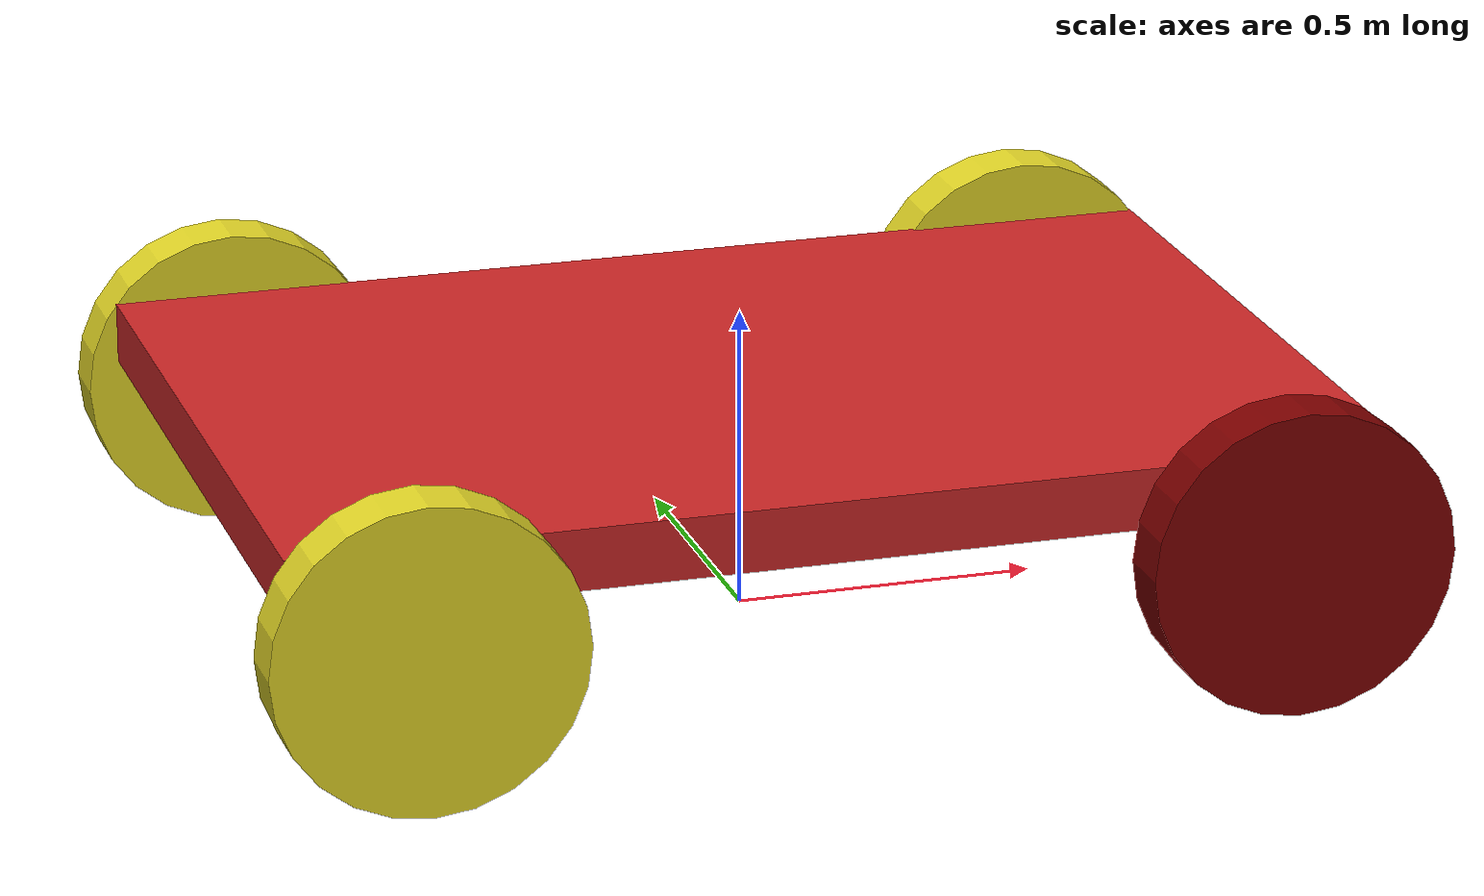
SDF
<?xml version='1.0'?>
<sdf version='1.6'>
  <model name='rover'>
    <link name='link_0'>
      <inertial>
        <mass>1</mass>
        <inertia>
          <ixx>0.0164583</ixx>
          <ixy>0</ixy>
          <ixz>0</ixz>
          <iyy>0.0164583</iyy>
          <iyz>0</iyz>
          <izz>0.03125</izz>
        </inertia>
        <pose frame=''>0 0 0 0 -0 0</pose>
      </inertial>
      <pose frame=''>0.7 -0.675024 0.25 1.5707 -0 0</pose>
      <gravity>1</gravity>
      <self_collide>0</self_collide>
      <kinematic>0</kinematic>
      <enable_wind>0</enable_wind>
      <visual name='visual'>
        <pose frame=''>0 0 0 0 -0 0</pose>
        <geometry>
          <cylinder>
            <radius>0.25</radius>
            <length>0.1</length>
          </cylinder>
        </geometry>
        <material>
          <lighting>1</lighting>
          <script>
            <uri>file://media/materials/scripts/gazebo.material</uri>
            <name>Gazebo/Grey</name>
          </script>
          <shader type='vertex'>
            <normal_map>__default__</normal_map>
          </shader>
          <ambient>0.5 0 0 1</ambient>
          <diffuse>0.5 0 0 1</diffuse>
          <specular>0.5 0 0 1</specular>
          <emissive>0.5 0 0 1</emissive>
        </material>
        <transparency>0</transparency>
        <cast_shadows>1</cast_shadows>
      </visual>
      <collision name='collision'>
        <laser_retro>0</laser_retro>
        <max_contacts>10</max_contacts>
        <pose frame=''>0 0 0 0 -0 0</pose>
        <geometry>
          <cylinder>
            <radius>0.25</radius>
            <length>0.1</length>
          </cylinder>
        </geometry>
        <surface>
          <friction>
            <ode>
              <mu>1</mu>
              <mu2>1</mu2>
              <fdir1>0 0 0</fdir1>
              <slip1>0</slip1>
              <slip2>0</slip2>
            </ode>
            <torsional>
              <coefficient>1</coefficient>
              <patch_radius>0</patch_radius>
              <surface_radius>0</surface_radius>
              <use_patch_radius>1</use_patch_radius>
              <ode>
                <slip>0</slip>
              </ode>
            </torsional>
          </friction>
          <bounce>
            <restitution_coefficient>0</restitution_coefficient>
            <threshold>1e+06</threshold>
          </bounce>
          <contact>
            <collide_without_contact>0</collide_without_contact>
            <collide_without_contact_bitmask>1</collide_without_contact_bitmask>
            <collide_bitmask>1</collide_bitmask>
            <ode>
              <soft_cfm>0</soft_cfm>
              <soft_erp>0.2</soft_erp>
              <kp>1e+13</kp>
              <kd>1</kd>
              <max_vel>0.01</max_vel>
              <min_depth>0</min_depth>
            </ode>
            <bullet>
              <split_impulse>1</split_impulse>
              <split_impulse_penetration_threshold>-0.01</split_impulse_penetration_threshold>
              <soft_cfm>0</soft_cfm>
              <soft_erp>0.2</soft_erp>
              <kp>1e+13</kp>
              <kd>1</kd>
            </bullet>
          </contact>
        </surface>
      </collision>
    </link>
    <link name='link_0_0'>
      <inertial>
        <mass>0.341385</mass>
        <inertia>
          <ixx>0.0369487</ixx>
          <ixy>0</ixy>
          <ixz>0</ixz>
          <iyy>0.147803</iyy>
          <iyz>0</iyz>
          <izz>0.183752</izz>
        </inertia>
        <pose frame=''>0 0 0 0 -0 0</pose>
      </inertial>
      <pose frame=''>-0 0 0.35 0 -0 0</pose>
      <gravity>1</gravity>
      <self_collide>0</self_collide>
      <kinematic>0</kinematic>
      <enable_wind>0</enable_wind>
      <visual name='visual'>
        <pose frame=''>0 0 0 0 -0 0</pose>
        <geometry>
          <box>
            <size>1.8 1.25 0.1</size>
          </box>
        </geometry>
        <material>
          <lighting>1</lighting>
          <script>
            <uri>file://media/materials/scripts/gazebo.material</uri>
            <name>Gazebo/Red</name>
          </script>
          <shader type='vertex'>
            <normal_map>__default__</normal_map>
          </shader>
          <ambient>1 0 0 1</ambient>
          <diffuse>1 0 0 1</diffuse>
          <specular>1 0 0 1</specular>
          <emissive>1 0 0 1</emissive>
        </material>
        <transparency>0</transparency>
        <cast_shadows>1</cast_shadows>
      </visual>
      <collision name='collision'>
        <laser_retro>0</laser_retro>
        <max_contacts>10</max_contacts>
        <pose frame=''>0 0 0 0 -0 0</pose>
        <geometry>
          <box>
            <size>1.8 1.25 0.1</size>
          </box>
        </geometry>
        <surface>
          <friction>
            <ode>
              <mu>1</mu>
              <mu2>1</mu2>
              <fdir1>0 0 0</fdir1>
              <slip1>0</slip1>
              <slip2>0</slip2>
            </ode>
            <torsional>
              <coefficient>1</coefficient>
              <patch_radius>0</patch_radius>
              <surface_radius>0</surface_radius>
              <use_patch_radius>1</use_patch_radius>
              <ode>
                <slip>0</slip>
              </ode>
            </torsional>
          </friction>
          <bounce>
            <restitution_coefficient>0</restitution_coefficient>
            <threshold>1e+06</threshold>
          </bounce>
          <contact>
            <collide_without_contact>0</collide_without_contact>
            <collide_without_contact_bitmask>1</collide_without_contact_bitmask>
            <collide_bitmask>1</collide_bitmask>
            <ode>
              <soft_cfm>0</soft_cfm>
              <soft_erp>0.2</soft_erp>
              <kp>1e+13</kp>
              <kd>1</kd>
              <max_vel>0.01</max_vel>
              <min_depth>0</min_depth>
            </ode>
            <bullet>
              <split_impulse>1</split_impulse>
              <split_impulse_penetration_threshold>-0.01</split_impulse_penetration_threshold>
              <soft_cfm>0</soft_cfm>
              <soft_erp>0.2</soft_erp>
              <kp>1e+13</kp>
              <kd>1</kd>
            </bullet>
          </contact>
        </surface>
      </collision>
    </link>
    <link name='link_0_clone'>
      <inertial>
        <mass>1</mass>
        <inertia>
          <ixx>0.145833</ixx>
          <ixy>0</ixy>
          <ixz>0</ixz>
          <iyy>0.145833</iyy>
          <iyz>0</iyz>
          <izz>0.125</izz>
        </inertia>
        <pose frame=''>0 0 0 0 -0 0</pose>
      </inertial>
      <pose frame=''>0.7 0.667373 0.250004 1.5707 -0 0</pose>
      <gravity>1</gravity>
      <self_collide>0</self_collide>
      <kinematic>0</kinematic>
      <enable_wind>0</enable_wind>
      <visual name='visual'>
        <pose frame=''>0 0 0 0 -0 0</pose>
        <geometry>
          <cylinder>
            <radius>0.25</radius>
            <length>0.1</length>
          </cylinder>
        </geometry>
        <material>
          <lighting>1</lighting>
          <script>
            <uri>file://media/materials/scripts/gazebo.material</uri>
            <name>Gazebo/Yellow</name>
          </script>
          <shader type='vertex'>
            <normal_map>__default__</normal_map>
          </shader>
          <ambient>0.5 0 0 1</ambient>
          <diffuse>0.5 0 0 1</diffuse>
          <specular>0.5 0 0 1</specular>
          <emissive>0.5 0 0 1</emissive>
        </material>
        <transparency>0</transparency>
        <cast_shadows>1</cast_shadows>
      </visual>
      <collision name='collision'>
        <laser_retro>0</laser_retro>
        <max_contacts>10</max_contacts>
        <pose frame=''>0 0 0 0 -0 0</pose>
        <geometry>
          <cylinder>
            <radius>0.25</radius>
            <length>0.1</length>
          </cylinder>
        </geometry>
        <surface>
          <friction>
            <ode>
              <mu>1</mu>
              <mu2>1</mu2>
              <fdir1>0 0 0</fdir1>
              <slip1>0</slip1>
              <slip2>0</slip2>
            </ode>
            <torsional>
              <coefficient>1</coefficient>
              <patch_radius>0</patch_radius>
              <surface_radius>0</surface_radius>
              <use_patch_radius>1</use_patch_radius>
              <ode>
                <slip>0</slip>
              </ode>
            </torsional>
          </friction>
          <bounce>
            <restitution_coefficient>0</restitution_coefficient>
            <threshold>1e+06</threshold>
          </bounce>
          <contact>
            <collide_without_contact>0</collide_without_contact>
            <collide_without_contact_bitmask>1</collide_without_contact_bitmask>
            <collide_bitmask>1</collide_bitmask>
            <ode>
              <soft_cfm>0</soft_cfm>
              <soft_erp>0.2</soft_erp>
              <kp>1e+13</kp>
              <kd>1</kd>
              <max_vel>0.01</max_vel>
              <min_depth>0</min_depth>
            </ode>
            <bullet>
              <split_impulse>1</split_impulse>
              <split_impulse_penetration_threshold>-0.01</split_impulse_penetration_threshold>
              <soft_cfm>0</soft_cfm>
              <soft_erp>0.2</soft_erp>
              <kp>1e+13</kp>
              <kd>1</kd>
            </bullet>
          </contact>
        </surface>
      </collision>
    </link>
    <link name='link_0_clone_0'>
      <inertial>
        <mass>1</mass>
        <inertia>
          <ixx>0.0164583</ixx>
          <ixy>0</ixy>
          <ixz>0</ixz>
          <iyy>0.0164583</iyy>
          <iyz>0</iyz>
          <izz>0.03125</izz>
        </inertia>
        <pose frame=''>0 0 0 0 -0 0</pose>
      </inertial>
      <pose frame=''>-0.7 -0.67687 0.25 1.5707 -0 0</pose>
      <gravity>1</gravity>
      <self_collide>0</self_collide>
      <kinematic>0</kinematic>
      <enable_wind>0</enable_wind>
      <visual name='visual'>
        <pose frame=''>0 0 0 0 -0 0</pose>
        <geometry>
          <cylinder>
            <radius>0.25</radius>
            <length>0.1</length>
          </cylinder>
        </geometry>
        <material>
          <lighting>1</lighting>
          <script>
            <uri>file://media/materials/scripts/gazebo.material</uri>
            <name>Gazebo/Yellow</name>
          </script>
          <shader type='vertex'>
            <normal_map>__default__</normal_map>
          </shader>
          <ambient>0.5 0 0 1</ambient>
          <diffuse>0.5 0 0 1</diffuse>
          <specular>0.5 0 0 1</specular>
          <emissive>0.5 0 0 1</emissive>
        </material>
        <transparency>0</transparency>
        <cast_shadows>1</cast_shadows>
      </visual>
      <collision name='collision'>
        <laser_retro>0</laser_retro>
        <max_contacts>10</max_contacts>
        <pose frame=''>0 0 0 0 -0 0</pose>
        <geometry>
          <cylinder>
            <radius>0.25</radius>
            <length>0.1</length>
          </cylinder>
        </geometry>
        <surface>
          <friction>
            <ode>
              <mu>1</mu>
              <mu2>1</mu2>
              <fdir1>0 0 0</fdir1>
              <slip1>0</slip1>
              <slip2>0</slip2>
            </ode>
            <torsional>
              <coefficient>1</coefficient>
              <patch_radius>0</patch_radius>
              <surface_radius>0</surface_radius>
              <use_patch_radius>1</use_patch_radius>
              <ode>
                <slip>0</slip>
              </ode>
            </torsional>
          </friction>
          <bounce>
            <restitution_coefficient>0</restitution_coefficient>
            <threshold>1e+06</threshold>
          </bounce>
          <contact>
            <collide_without_contact>0</collide_without_contact>
            <collide_without_contact_bitmask>1</collide_without_contact_bitmask>
            <collide_bitmask>1</collide_bitmask>
            <ode>
              <soft_cfm>0</soft_cfm>
              <soft_erp>0.2</soft_erp>
              <kp>1e+13</kp>
              <kd>1</kd>
              <max_vel>0.01</max_vel>
              <min_depth>0</min_depth>
            </ode>
            <bullet>
              <split_impulse>1</split_impulse>
              <split_impulse_penetration_threshold>-0.01</split_impulse_penetration_threshold>
              <soft_cfm>0</soft_cfm>
              <soft_erp>0.2</soft_erp>
              <kp>1e+13</kp>
              <kd>1</kd>
            </bullet>
          </contact>
        </surface>
      </collision>
    </link>
    <link name='link_0_clone_0_clone'>
      <inertial>
        <mass>1</mass>
        <inertia>
          <ixx>0.0164583</ixx>
          <ixy>0</ixy>
          <ixz>0</ixz>
          <iyy>0.0164583</iyy>
          <iyz>0</iyz>
          <izz>0.03125</izz>
        </inertia>
        <pose frame=''>0 0 0 0 -0 0</pose>
      </inertial>
      <pose frame=''>-0.7 0.673178 0.25 1.5707 -0 0</pose>
      <gravity>1</gravity>
      <self_collide>0</self_collide>
      <kinematic>0</kinematic>
      <enable_wind>0</enable_wind>
      <visual name='visual'>
        <pose frame=''>0 0 0 0 -0 0</pose>
        <geometry>
          <cylinder>
            <radius>0.25</radius>
            <length>0.1</length>
          </cylinder>
        </geometry>
        <material>
          <lighting>1</lighting>
          <script>
            <uri>file://media/materials/scripts/gazebo.material</uri>
            <name>Gazebo/Yellow</name>
          </script>
          <shader type='vertex'>
            <normal_map>__default__</normal_map>
          </shader>
          <ambient>0.5 0 0 1</ambient>
          <diffuse>0.5 0 0 1</diffuse>
          <specular>0.5 0 0 1</specular>
          <emissive>0.5 0 0 1</emissive>
        </material>
        <transparency>0</transparency>
        <cast_shadows>1</cast_shadows>
      </visual>
      <collision name='collision'>
        <laser_retro>0</laser_retro>
        <max_contacts>10</max_contacts>
        <pose frame=''>0 0 0 0 -0 0</pose>
        <geometry>
          <cylinder>
            <radius>0.25</radius>
            <length>0.1</length>
          </cylinder>
        </geometry>
        <surface>
          <friction>
            <ode>
              <mu>1</mu>
              <mu2>1</mu2>
              <fdir1>0 0 0</fdir1>
              <slip1>0</slip1>
              <slip2>0</slip2>
            </ode>
            <torsional>
              <coefficient>1</coefficient>
              <patch_radius>0</patch_radius>
              <surface_radius>0</surface_radius>
              <use_patch_radius>1</use_patch_radius>
              <ode>
                <slip>0</slip>
              </ode>
            </torsional>
          </friction>
          <bounce>
            <restitution_coefficient>0</restitution_coefficient>
            <threshold>1e+06</threshold>
          </bounce>
          <contact>
            <collide_without_contact>0</collide_without_contact>
            <collide_without_contact_bitmask>1</collide_without_contact_bitmask>
            <collide_bitmask>1</collide_bitmask>
            <ode>
              <soft_cfm>0</soft_cfm>
              <soft_erp>0.2</soft_erp>
              <kp>1e+13</kp>
              <kd>1</kd>
              <max_vel>0.01</max_vel>
              <min_depth>0</min_depth>
            </ode>
            <bullet>
              <split_impulse>1</split_impulse>
              <split_impulse_penetration_threshold>-0.01</split_impulse_penetration_threshold>
              <soft_cfm>0</soft_cfm>
              <soft_erp>0.2</soft_erp>
              <kp>1e+13</kp>
              <kd>1</kd>
            </bullet>
          </contact>
        </surface>
      </collision>
    </link>
    <link name='link_1'>
      <inertial>
        <mass>1</mass>
        <inertia>
          <ixx>0.166667</ixx>
          <ixy>0</ixy>
          <ixz>0</ixz>
          <iyy>0.166667</iyy>
          <iyz>0</iyz>
          <izz>0.166667</izz>
        </inertia>
        <pose frame=''>0 0 0 0 -0 0</pose>
      </inertial>
      <pose frame=''>0.7 -0 0.25 0 -0 0</pose>
      <gravity>1</gravity>
      <self_collide>0</self_collide>
      <kinematic>0</kinematic>
      <enable_wind>0</enable_wind>
      <visual name='visual'>
        <pose frame=''>0 0 0 0 -0 0</pose>
        <geometry>
          <box>
            <size>0.2 1.25 0.1</size>
          </box>
        </geometry>
        <material>
          <lighting>1</lighting>
          <script>
            <uri>file://media/materials/scripts/gazebo.material</uri>
            <name>Gazebo/Orange</name>
          </script>
          <emissive>0 0 0 1</emissive>
          <shader type='vertex'>
            <normal_map>__default__</normal_map>
          </shader>
          <ambient>0.3 0.3 0.3 1</ambient>
          <diffuse>0.7 0.7 0.7 1</diffuse>
          <specular>0.01 0.01 0.01 1</specular>
        </material>
        <transparency>0</transparency>
        <cast_shadows>1</cast_shadows>
      </visual>
      <collision name='collision'>
        <laser_retro>0</laser_retro>
        <max_contacts>10</max_contacts>
        <pose frame=''>0 0 0 0 -0 0</pose>
        <geometry>
          <box>
            <size>0.2 1.25 0.1</size>
          </box>
        </geometry>
        <surface>
          <friction>
            <ode>
              <mu>1</mu>
              <mu2>1</mu2>
              <fdir1>0 0 0</fdir1>
              <slip1>0</slip1>
              <slip2>0</slip2>
            </ode>
            <torsional>
              <coefficient>1</coefficient>
              <patch_radius>0</patch_radius>
              <surface_radius>0</surface_radius>
              <use_patch_radius>1</use_patch_radius>
              <ode>
                <slip>0</slip>
              </ode>
            </torsional>
          </friction>
          <bounce>
            <restitution_coefficient>0</restitution_coefficient>
            <threshold>1e+06</threshold>
          </bounce>
          <contact>
            <collide_without_contact>0</collide_without_contact>
            <collide_without_contact_bitmask>1</collide_without_contact_bitmask>
            <collide_bitmask>1</collide_bitmask>
            <ode>
              <soft_cfm>0</soft_cfm>
              <soft_erp>0.2</soft_erp>
              <kp>1e+13</kp>
              <kd>1</kd>
              <max_vel>0.01</max_vel>
              <min_depth>0</min_depth>
            </ode>
            <bullet>
              <split_impulse>1</split_impulse>
              <split_impulse_penetration_threshold>-0.01</split_impulse_penetration_threshold>
              <soft_cfm>0</soft_cfm>
              <soft_erp>0.2</soft_erp>
              <kp>1e+13</kp>
              <kd>1</kd>
            </bullet>
          </contact>
        </surface>
      </collision>
    </link>
    <link name='link_1_clone'>
      <inertial>
        <mass>1</mass>
        <inertia>
          <ixx>0.166667</ixx>
          <ixy>0</ixy>
          <ixz>0</ixz>
          <iyy>0.166667</iyy>
          <iyz>0</iyz>
          <izz>0.166667</izz>
        </inertia>
        <pose frame=''>0 0 0 0 -0 0</pose>
      </inertial>
      <pose frame=''>-0.7 -0.001846 0.25 0 -0 0</pose>
      <gravity>1</gravity>
      <self_collide>0</self_collide>
      <kinematic>0</kinematic>
      <enable_wind>0</enable_wind>
      <visual name='visual'>
        <pose frame=''>0 0 0 0 -0 0</pose>
        <geometry>
          <box>
            <size>0.2 1.25 0.1</size>
          </box>
        </geometry>
        <material>
          <lighting>1</lighting>
          <script>
            <uri>file://media/materials/scripts/gazebo.material</uri>
            <name>Gazebo/Orange</name>
          </script>
          <emissive>0 0 0 1</emissive>
          <shader type='vertex'>
            <normal_map>__default__</normal_map>
          </shader>
          <ambient>0.3 0.3 0.3 1</ambient>
          <diffuse>0.7 0.7 0.7 1</diffuse>
          <specular>0.01 0.01 0.01 1</specular>
        </material>
        <transparency>0</transparency>
        <cast_shadows>1</cast_shadows>
      </visual>
      <collision name='collision'>
        <laser_retro>0</laser_retro>
        <max_contacts>10</max_contacts>
        <pose frame=''>0 0 0 0 -0 0</pose>
        <geometry>
          <box>
            <size>0.2 1.25 0.1</size>
          </box>
        </geometry>
        <surface>
          <friction>
            <ode>
              <mu>1</mu>
              <mu2>1</mu2>
              <fdir1>0 0 0</fdir1>
              <slip1>0</slip1>
              <slip2>0</slip2>
            </ode>
            <torsional>
              <coefficient>1</coefficient>
              <patch_radius>0</patch_radius>
              <surface_radius>0</surface_radius>
              <use_patch_radius>1</use_patch_radius>
              <ode>
                <slip>0</slip>
              </ode>
            </torsional>
          </friction>
          <bounce>
            <restitution_coefficient>0</restitution_coefficient>
            <threshold>1e+06</threshold>
          </bounce>
          <contact>
            <collide_without_contact>0</collide_without_contact>
            <collide_without_contact_bitmask>1</collide_without_contact_bitmask>
            <collide_bitmask>1</collide_bitmask>
            <ode>
              <soft_cfm>0</soft_cfm>
              <soft_erp>0.2</soft_erp>
              <kp>1e+13</kp>
              <kd>1</kd>
              <max_vel>0.01</max_vel>
              <min_depth>0</min_depth>
            </ode>
            <bullet>
              <split_impulse>1</split_impulse>
              <split_impulse_penetration_threshold>-0.01</split_impulse_penetration_threshold>
              <soft_cfm>0</soft_cfm>
              <soft_erp>0.2</soft_erp>
              <kp>1e+13</kp>
              <kd>1</kd>
            </bullet>
          </contact>
        </surface>
      </collision>
    </link>
    <joint name='link_0_0_JOINT_11' type='fixed'>
      <parent>link_0_0</parent>
      <child>link_1</child>
      <pose frame=''>0 0 0 0 -0 0</pose>
      <physics>
        <ode>
          <limit>
            <cfm>0</cfm>
            <erp>0.2</erp>
          </limit>
          <suspension>
            <cfm>0</cfm>
            <erp>0.2</erp>
          </suspension>
        </ode>
      </physics>
    </joint>
    <joint name='link_1_JOINT_3' type='revolute'>
      <parent>link_1</parent>
      <child>link_0_clone</child>
      <pose frame=''>0 0 0 0 -0 0</pose>
      <axis>
        <xyz>0 0 1</xyz>
        <use_parent_model_frame>0</use_parent_model_frame>
        <limit>
          <lower>-1.79769e+308</lower>
          <upper>1.79769e+308</upper>
          <effort>-1</effort>
          <velocity>-1</velocity>
        </limit>
        <dynamics>
          <spring_reference>0</spring_reference>
          <spring_stiffness>0</spring_stiffness>
          <damping>0</damping>
          <friction>0</friction>
        </dynamics>
      </axis>
      <physics>
        <ode>
          <limit>
            <cfm>0</cfm>
            <erp>0.2</erp>
          </limit>
          <suspension>
            <cfm>0</cfm>
            <erp>0.2</erp>
          </suspension>
        </ode>
      </physics>
    </joint>
    <joint name='link_1_JOINT_4' type='revolute'>
      <parent>link_1</parent>
      <child>link_0</child>
      <pose frame=''>0 0 0 0 -0 0</pose>
      <axis>
        <xyz>0 0 1</xyz>
        <use_parent_model_frame>0</use_parent_model_frame>
        <limit>
          <lower>-1.79769e+308</lower>
          <upper>1.79769e+308</upper>
          <effort>-1</effort>
          <velocity>-1</velocity>
        </limit>
        <dynamics>
          <spring_reference>0</spring_reference>
          <spring_stiffness>0</spring_stiffness>
          <damping>0</damping>
          <friction>0</friction>
        </dynamics>
      </axis>
      <physics>
        <ode>
          <limit>
            <cfm>0</cfm>
            <erp>0.2</erp>
          </limit>
          <suspension>
            <cfm>0</cfm>
            <erp>0.2</erp>
          </suspension>
        </ode>
      </physics>
    </joint>
    <joint name='link_1_clone_JOINT_10' type='fixed'>
      <parent>link_1_clone</parent>
      <child>link_0_0</child>
      <pose frame=''>0 0 0 0 -0 0</pose>
      <physics>
        <ode>
          <limit>
            <cfm>0</cfm>
            <erp>0.2</erp>
          </limit>
          <suspension>
            <cfm>0</cfm>
            <erp>0.2</erp>
          </suspension>
        </ode>
      </physics>
    </joint>
    <joint name='link_1_clone_JOINT_7' type='revolute'>
      <parent>link_1_clone</parent>
      <child>link_0_clone_0_clone</child>
      <pose frame=''>0 0 0 0 -0 0</pose>
      <axis>
        <xyz>0 0 1</xyz>
        <use_parent_model_frame>0</use_parent_model_frame>
        <limit>
          <lower>-1.79769e+308</lower>
          <upper>1.79769e+308</upper>
          <effort>-1</effort>
          <velocity>-1</velocity>
        </limit>
        <dynamics>
          <spring_reference>0</spring_reference>
          <spring_stiffness>0</spring_stiffness>
          <damping>0</damping>
          <friction>0</friction>
        </dynamics>
      </axis>
      <physics>
        <ode>
          <limit>
            <cfm>0</cfm>
            <erp>0.2</erp>
          </limit>
          <suspension>
            <cfm>0</cfm>
            <erp>0.2</erp>
          </suspension>
        </ode>
      </physics>
    </joint>
    <joint name='link_1_clone_JOINT_8' type='revolute'>
      <parent>link_1_clone</parent>
      <child>link_0_clone_0</child>
      <pose frame=''>0 0 0 0 -0 0</pose>
      <axis>
        <xyz>0 0 1</xyz>
        <use_parent_model_frame>0</use_parent_model_frame>
        <limit>
          <lower>-1.79769e+308</lower>
          <upper>1.79769e+308</upper>
          <effort>-1</effort>
          <velocity>-1</velocity>
        </limit>
        <dynamics>
          <spring_reference>0</spring_reference>
          <spring_stiffness>0</spring_stiffness>
          <damping>0</damping>
          <friction>0</friction>
        </dynamics>
      </axis>
      <physics>
        <ode>
          <limit>
            <cfm>0</cfm>
            <erp>0.2</erp>
          </limit>
          <suspension>
            <cfm>0</cfm>
            <erp>0.2</erp>
          </suspension>
        </ode>
      </physics>
    </joint>
    <static>0</static>
    <allow_auto_disable>1</allow_auto_disable>
  </model>
</sdf>
